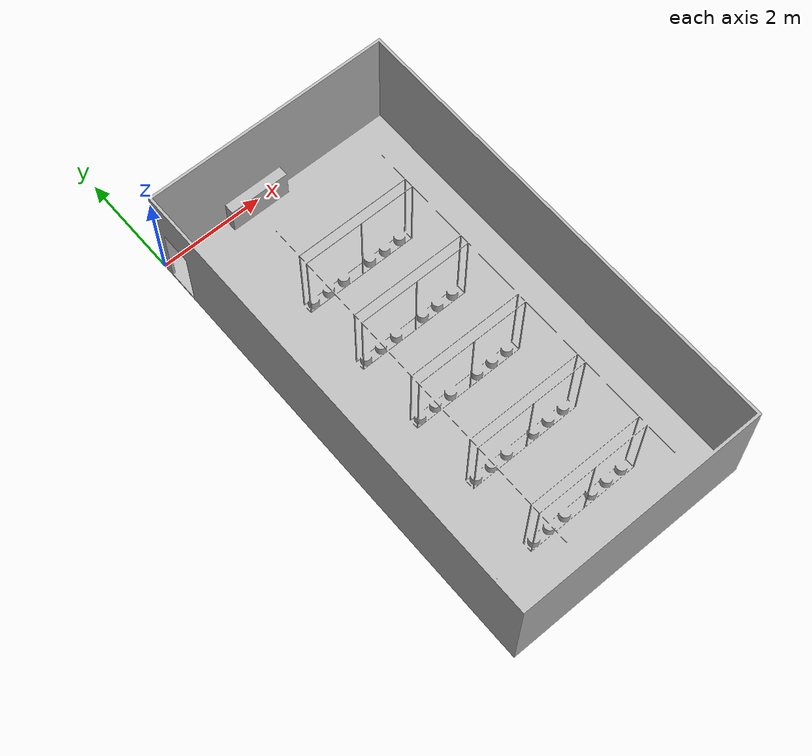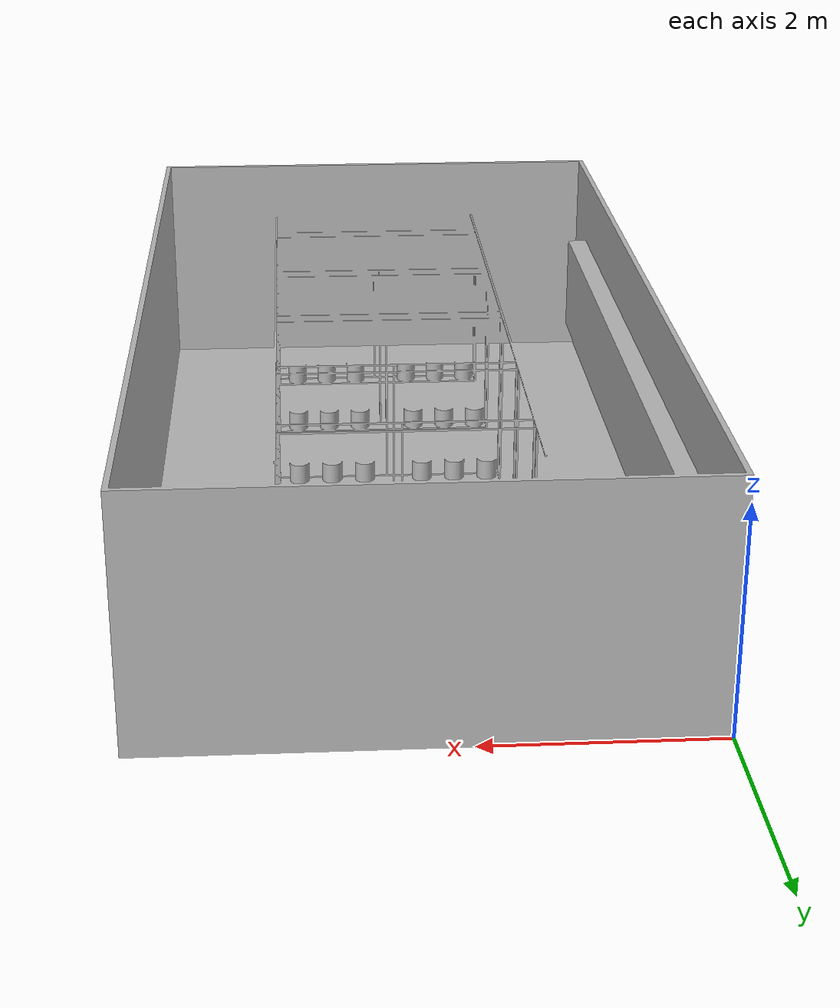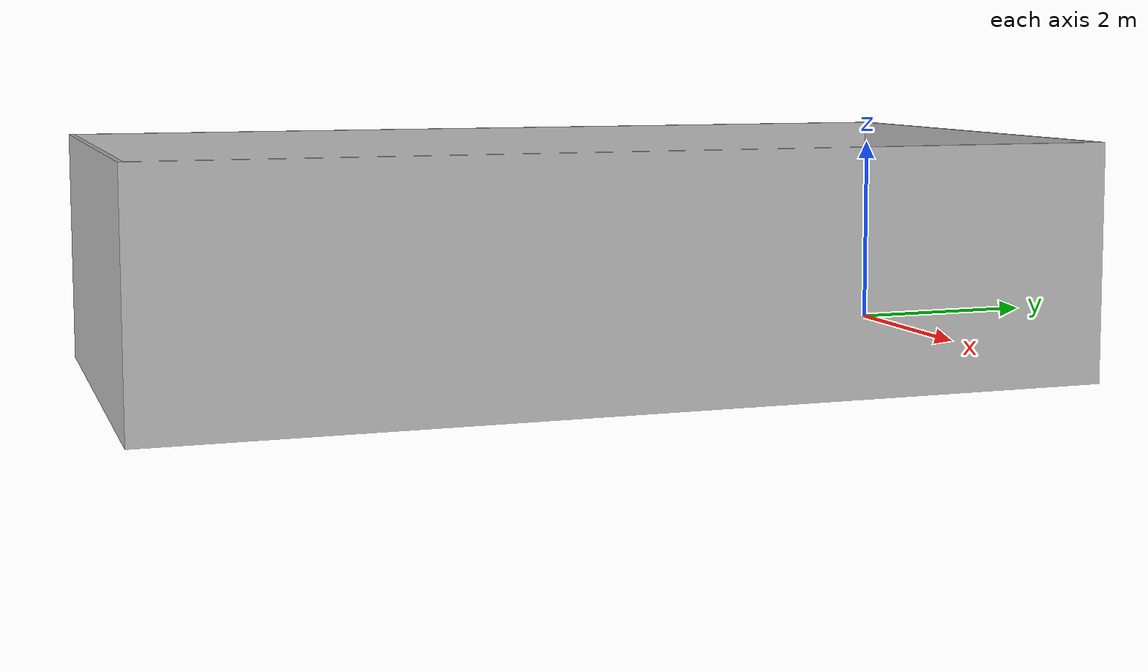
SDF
<?xml version="1.0"?>
<sdf version="1.5">
    <model name="greenhouse-treeless">
      <static>true</static>
      <link name="body">
        <visual name="visual">
          <geometry>
            <mesh><uri>model://greenhouse-treeless/meshes/greenhouse-treeless.dae</uri></mesh>
          </geometry>
        </visual>
        <collision name='collision'>
          <geometry>
            <mesh><uri>model://greenhouse-treeless/meshes/greenhouse-treeless.dae</uri></mesh>
          </geometry>
        </collision>
      </link>
    </model>
</sdf>
